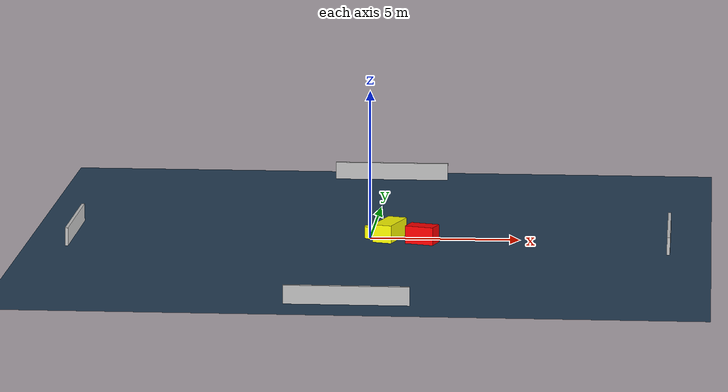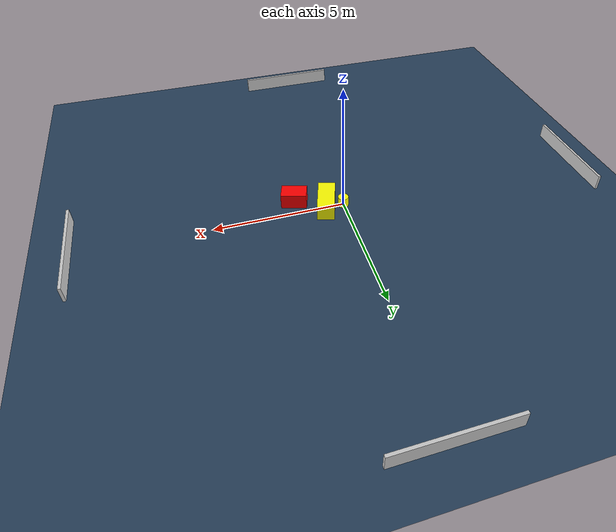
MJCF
<?xml version="1.0" ?>
<mujoco model="generated_environment">
  <option timestep="0.01" integrator="RK4" cone="elliptic"/>
  <default>
    <geom density="1"/>
  </default>
  <asset>
    <texture builtin="gradient" height="3072" name="skybox" rgb1="0.3 0.5 0.7" rgb2="0 0 0" type="skybox" width="512"/>
    <texture builtin="checker" height="300" name="groundplane" rgb1="0.2 0.3 0.4" rgb2="0.1 0.2 0.3" type="2d" width="300"/>
    <material name="groundplane" reflectance="0.2" texrepeat="5 5" texture="groundplane"/>
  </asset>
  <worldbody>
    <light dir="0 0 -1" directional="true" pos="0 0 1.5"/>
    <geom condim="3" friction="0.5 0.005 0.001" material="groundplane" name="floor" pos="0 0 0" size="0 0 0.05" type="plane"/>
    <body name="walls">
      <geom name="wall_1" condim="4" pos="-10.0 0.0 0.3" rgba="0.800000011920929 0.800000011920929 0.800000011920929 1.0" size="0.05 2.0 0.3" type="box"/>
      <geom name="wall_2" condim="4" pos="10.0 0.0 0.3" rgba="0.800000011920929 0.800000011920929 0.800000011920929 1.0" size="0.05 2.0 0.3" type="box"/>
      <geom name="wall_3" condim="4" pos="0.0 -10.0 0.3" rgba="0.800000011920929 0.800000011920929 0.800000011920929 1.0" size="2.0 0.05 0.3" type="box"/>
      <geom name="wall_4" condim="4" pos="0.0 10.0 0.3" rgba="0.800000011920929 0.800000011920929 0.800000011920929 1.0" size="2.0 0.05 0.3" type="box"/>
    </body>
    <body name="robot">
      <joint name="joint_x" type="slide" pos="0 0 0" axis="1 0 0"/>
      <joint name="joint_y" type="slide" pos="0 0 0" axis="0 1 0"/>
      <geom name="robot" type="cylinder" pos="0.0 0.0 0.2" size="0.2 0.2 0.0" mass="5.0" friction="1.0 0.005 0.0001" condim="4" rgba="1.0 1.0 0.0 1.0"/>
    </body>
    <body name="obstacle_1_movable">
      <geom name="obstacle_1_movable" condim="4" pos="0.6539477109315495 -0.07159966078612086 0.3" euler="0 0 162.98786014756564" friction="0.0 0.005 0.001" rgba="1.0 1.0 0.0 1.0" size="0.32637851086367764 0.7444205382702247 0.3" type="box" mass="0.1"/>
      <joint type="free"/>
    </body>
    <body name="obstacle_2_static">
      <geom name="obstacle_2_static" condim="4" pos="1.779139380097835 -0.6552462937646347 0.3" euler="0 0 73.03013387481985" friction="0.0 0.005 0.001" rgba="1.0 0.0 0.0 1.0" size="0.3096452597302225 0.48698303289860695 0.3" type="box"/>
    </body>
  </worldbody>
  <actuator>
    <motor name="actuator_x" joint="joint_x" gear="1" ctrlrange="-1 1"/>
    <motor name="actuator_y" joint="joint_y" gear="1" ctrlrange="-1 1"/>
  </actuator>
</mujoco>
